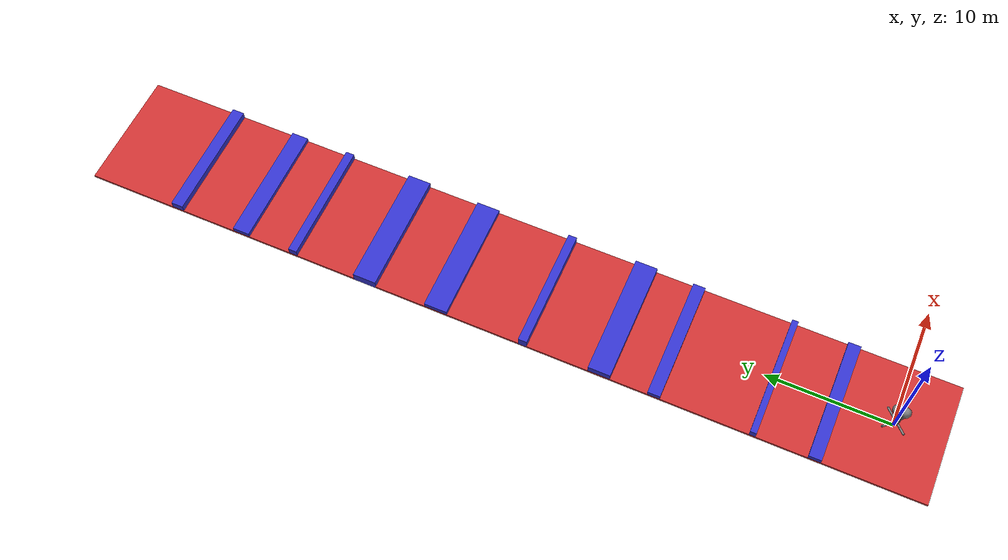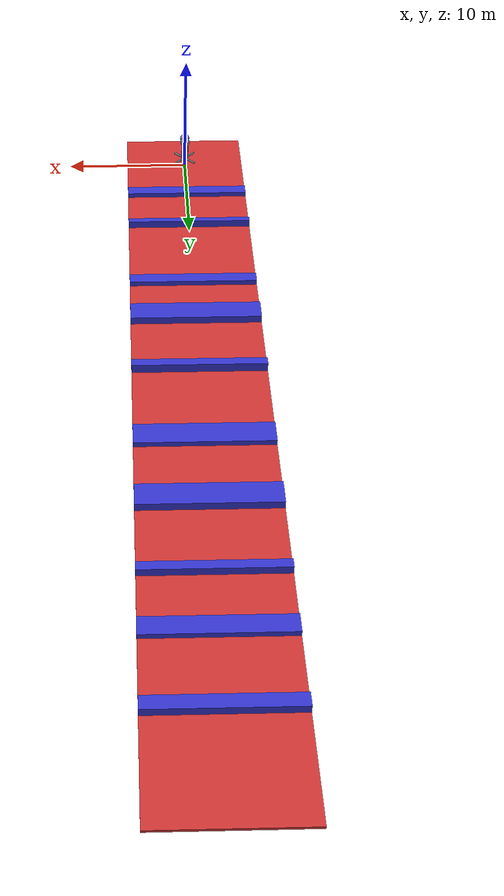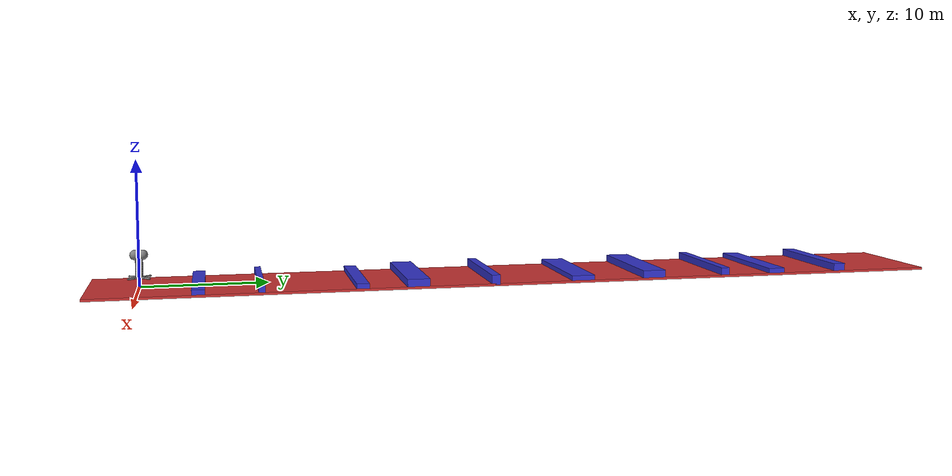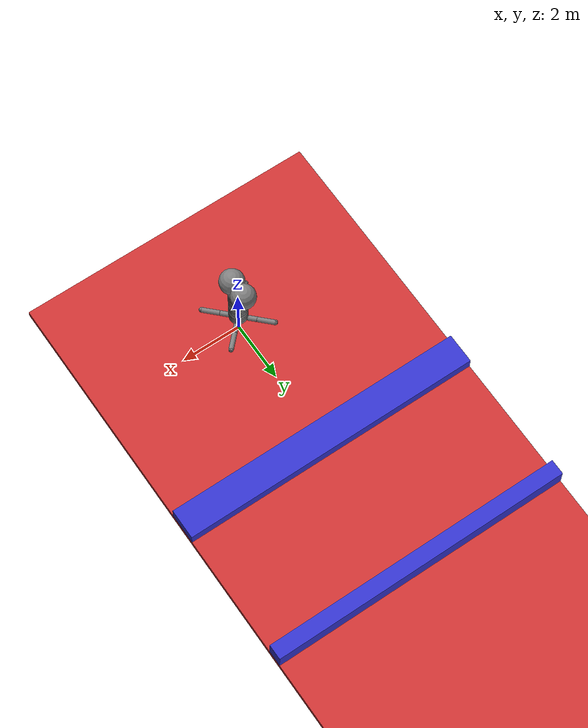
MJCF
<mujoco model="ant_maze">
  <compiler angle="degree" coordinate="local" inertiafromgeom="true"/>
  <option timestep="0.01" iterations="4" />
  <custom>
    <!-- brax custom params -->
    <numeric data="0 0 0.55 1.0 0.0 0.0 0.0 0.0 1.0 0.0 1.0 0.0 1.0 0.0 1.0" name="init_qpos"/>
    <numeric data="1000" name="constraint_limit_stiffness"/>
    <numeric data="4000" name="constraint_stiffness"/>
    <numeric data="10" name="constraint_ang_damping"/>
    <numeric data="20" name="constraint_vel_damping"/>
    <numeric data="0.5" name="joint_scale_pos"/>
    <numeric data="0.2" name="joint_scale_ang"/>
    <numeric data="0.0" name="ang_damping"/>
    <numeric data="1" name="spring_mass_scale"/>
    <numeric data="1" name="spring_inertia_scale"/>
    <numeric data="15" name="solver_maxls"/>
  </custom>
  <default>
    <joint armature="1" damping="1" limited="true"/>
    <geom contype="0" conaffinity="0" condim="3" density="5.0" friction="1 0.5 0.5"/>
  </default>
  <asset>
    <texture builtin="gradient" height="100" rgb1="1 1 1" rgb2="0 0 0" type="skybox" width="100"/>
    <texture builtin="flat" height="1278" mark="cross" markrgb="1 1 1" name="texgeom" random="0.01" rgb1="0.8 0.6 0.4" rgb2="0.8 0.6 0.4" type="cube" width="127"/>
    <texture builtin="checker" height="100" name="texplane" rgb1="0 0 0" rgb2="0.8 0.8 0.8" type="2d" width="100"/>
    <material name="MatPlane" reflectance="0.5" shininess="1" specular="1" texrepeat="60 60" texture="texplane"/>
    <material name="geom" texture="texgeom" texuniform="true"/>
  </asset>
  <contact>
    <exclude body1="torso" body2="torso"/>
    <exclude body1="torso" body2="aux_1"/>
    <exclude body1="aux_1" body2="aux_5"/>
    <exclude body1="torso" body2="aux_2"/>
    <exclude body1="aux_2" body2="aux_6"/>
    <exclude body1="torso" body2="aux_3"/>
    <exclude body1="aux_3" body2="aux_7"/>
    <exclude body1="torso" body2="aux_4"/>
    <exclude body1="aux_4" body2="aux_8"/>
  </contact>
  <worldbody>
    <light cutoff="100" diffuse="1 1 1" dir="-0 0 -1.3" directional="true" exponent="1" pos="0 0 1.3" specular=".1 .1 .1"/>

    <!-- environment -->
    <geom conaffinity="1" condim="3" rgba="0.8 0.2 0.2 1" size="5 34.85 0.1" pos="0 30.85 -0.1" type="box"/>
    <geom conaffinity="1" condim="3" rgba="0.2 0.2 0.8 1" size="5 0.5 0.2" pos="0 4.5 0.2" type="box"/>
    <geom conaffinity="1" condim="3" rgba="0.2 0.2 0.8 1" size="5 0.25 0.3" pos="0 9.25 0.3" type="box"/>
    <geom conaffinity="1" condim="3" rgba="0.2 0.2 0.8 1" size="5 0.5 0.2" pos="0 17 0.2" type="box"/>
    <geom conaffinity="1" condim="3" rgba="0.2 0.2 0.8 1" size="5 0.9 0.3" pos="0 21.4 0.3" type="box"/>
    <geom conaffinity="1" condim="3" rgba="0.2 0.2 0.8 1" size="5 0.35 0.4" pos="0 27.65 0.3" type="box"/>
    <geom conaffinity="1" condim="3" rgba="0.2 0.2 0.8 1" size="5 0.95 0.2" pos="0 34.95 0.2" type="box"/>
    <geom conaffinity="1" condim="3" rgba="0.2 0.2 0.8 1" size="5 0.95 0.4" pos="0 41.05 0.2" type="box"/>
    <geom conaffinity="1" condim="3" rgba="0.2 0.2 0.8 1" size="5 0.35 0.3" pos="0 47.35 0.3" type="box"/>
    <geom conaffinity="1" condim="3" rgba="0.2 0.2 0.8 1" size="5 0.7 0.2" pos="0 52 0.2" type="box"/>
    <geom conaffinity="1" condim="3" rgba="0.2 0.2 0.8 1" size="5 0.5 0.3" pos="0 57.8 0.3" type="box"/>

    <!-- ant -->
    <body name="torso" pos="0 0 0.75">
      <camera name="track" mode="trackcom" pos="0 -3 0.3" xyaxes="1 0 0 0 0 1"/>
      <geom contype="1" pos="0 0 0" size="0.25" type="sphere"/>
      <geom contype="1" pos="0 0 0.1" size="0.3" type="sphere"/>
      <geom contype="1" pos="0 0 0.2" size="0.3" type="sphere"/>
      <geom contype="1" pos="0 0 0.3" size="0.3" type="sphere"/>
      <geom contype="1" pos="0 0 0.4" size="0.3" type="sphere"/>
      <geom contype="1" pos="0 0 0.6" size="0.3" type="sphere"/>
      <geom contype="1" pos="0 0 0.7" size="0.3" type="sphere"/>
      <geom contype="1" pos="0 0 0.8" size="0.3" type="sphere"/>
      <geom contype="1" pos="0 0 0.8" size="0.3" type="sphere"/>
      <geom contype="1" pos="0 0 1.0" size="0.3" type="sphere"/>
      <geom contype="1" pos="0 0 1.1" size="0.3" type="sphere"/>
      <geom contype="1" pos="0 0 1.2" size="0.3" type="sphere"/>
      <geom contype="1" pos="0 0 1.3" size="0.3" type="sphere"/>
      <geom contype="1" pos="0 0 1.4" size="0.3" type="sphere"/>
      <geom contype="1" pos="0 0 1.5" size="0.3" type="sphere"/>
      <geom contype="1" pos="0 0.3 1.8" size="0.4" type="sphere"/>
      <geom contype="1" pos="0 -0.3 1.8" size="0.4" type="sphere"/>

      <joint armature="0" damping="0" limited="false" margin="0.01" name="root" pos="0 0 0" type="free"/>
      <body name="front_left_leg" pos="0 0 0">
        <geom fromto="0.0 0.0 0.0 0.2 0.2 0.0" name="aux_1_geom" size="0.08" type="capsule"/>
        <body name="aux_1" pos="0.4 0.4 0">
          <joint axis="0 0 1" name="hip_1" pos="-0.2 -0.2 0.0" range="-30 30" type="hinge"/>
          <geom fromto="0.0 0.0 0.0 -0.2 -0.2 0.0" name="left_leg_geom" size="0.08" type="capsule"/>
          <geom name="left_hip_geom" contype="1" pos="0 0 0" size="0.08" type="sphere" mass="0"/>
          <body name="aux_5" pos="0.4 0.4 0">
            <joint axis="-1 1 0" name="ankle_1" pos="-0.4 -0.4 0.0" range="30 70" type="hinge"/>
            <geom fromto="0.0 0.0 0.0 -0.4 -0.4 0.0" name="left_ankle_geom" contype="1" size="0.08" type="capsule"/>
            <geom name="left_foot_geom" contype="1" pos="0 0 0" size="0.08" type="sphere" mass="0"/>
          </body>
        </body>
      </body>
      <body name="front_right_leg" pos="0 0 0">
        <geom fromto="0.0 0.0 0.0 -0.2 0.2 0.0" name="aux_2_geom" size="0.08" type="capsule"/>
        <body name="aux_2" pos="-0.4 0.4 0" euler = "0 0 90">
          <joint axis="0 0 1" name="hip_2" pos="-0.2 -0.2 0.0" range="-30 30" type="hinge"/>
          <geom fromto="0.0 0.0 0.0 -0.2 -0.2 0.0" name="right_leg_geom" size="0.08" type="capsule"/>
          <geom name="right_hip_geom" contype="1" pos="0 0 0" size="0.08" type="sphere" mass="0"/>
          <body name="aux_6" pos="0.4 0.4 0">
            <joint axis="-1 1 0" name="ankle_2" pos="-0.4 -0.4 0.0" range="30 70" type="hinge"/>
            <geom fromto="0.0 0.0 0.0 -0.4 -0.4 0.0" name="right_ankle_geom" contype="1" size="0.08" type="capsule"/>
            <geom name="right_foot_geom" contype="1" pos="0 0 0" size="0.08" type="sphere" mass="0"/>
          </body>
        </body>
      </body>
      <body name="back_leg" pos="0 0 0">
        <geom fromto="0.0 0.0 0.0 -0.2 -0.2 0.0" name="aux_3_geom" size="0.08" type="capsule"/>
        <body name="aux_3" pos="-0.4 -0.4 0" euler = "0 0 180">
          <joint axis="0 0 1" name="hip_3" pos="-0.2 -0.2 0.0" range="-30 30" type="hinge"/>
          <geom fromto="0.0 0.0 0.0 -0.2 -0.2 0.0" name="back_leg_geom" size="0.08" type="capsule"/>
          <geom name="third_hip_geom" contype="1" pos="0 0 0" size="0.08" type="sphere" mass="0"/>
          <body name="aux_7" pos="0.4 0.4 0">
            <joint axis="-1 1 0" name="ankle_3" pos="-0.4 -0.4 0.0" range="30 70" type="hinge"/>
            <geom fromto="0.0 0.0 0.0 -0.4 -0.4 0.0" name="third_ankle_geom" contype="1" size="0.08" type="capsule"/>
            <geom name="third_foot_geom" contype="1" pos="0 0 0" size="0.08" type="sphere" mass="0"/>
          </body>
        </body>
      </body>
      <body name="right_back_leg" pos="0 0 0">
        <geom fromto="0.0 0.0 0.0 0.2 -0.2 0.0" name="aux_4_geom" size="0.08" type="capsule"/>
        <body name="aux_4" pos="0.4 -0.4 0" euler="0 0 270">
          <joint axis="0 0 1" name="hip_4" pos="-0.2 -0.2 0.0" range="-30 30" type="hinge"/>
          <geom fromto="0.0 0.0 0.0 -0.2 -0.2 0.0" name="rightback_leg_geom" size="0.08" type="capsule"/>
          <geom name="fourth_hip_geom" contype="1" pos="0 0 0" size="0.08" type="sphere" mass="0"/>
          <body name="aux_8" pos="0.4 0.4 0">
            <joint axis="-1 1 0" name="ankle_4" pos="-0.4 -0.4 0.0" range="30 70" type="hinge"/>
            <geom fromto="0.0 0.0 0.0 -0.4 -0.4 0.0" name="fourth_ankle_geom" contype="1" size="0.08" type="capsule"/>
            <geom name="fourth_foot_geom" contype="1" pos="0 0 0" size="0.08" type="sphere" mass="0"/>
          </body>
        </body>
      </body>
    </body>
  </worldbody>
  <actuator>
    <motor ctrllimited="true" ctrlrange="-1.0 1.0" joint="hip_1" gear="150"/>
    <motor ctrllimited="true" ctrlrange="-1.0 1.0" joint="ankle_1" gear="150"/>
    <motor ctrllimited="true" ctrlrange="-1.0 1.0" joint="hip_2" gear="150"/>
    <motor ctrllimited="true" ctrlrange="-1.0 1.0" joint="ankle_2" gear="150"/>
    <motor ctrllimited="true" ctrlrange="-1.0 1.0" joint="hip_3" gear="150"/>
    <motor ctrllimited="true" ctrlrange="-1.0 1.0" joint="ankle_3" gear="150"/>
    <motor ctrllimited="true" ctrlrange="-1.0 1.0" joint="hip_4" gear="150"/>
    <motor ctrllimited="true" ctrlrange="-1.0 1.0" joint="ankle_4" gear="150"/>
  </actuator>
</mujoco>
